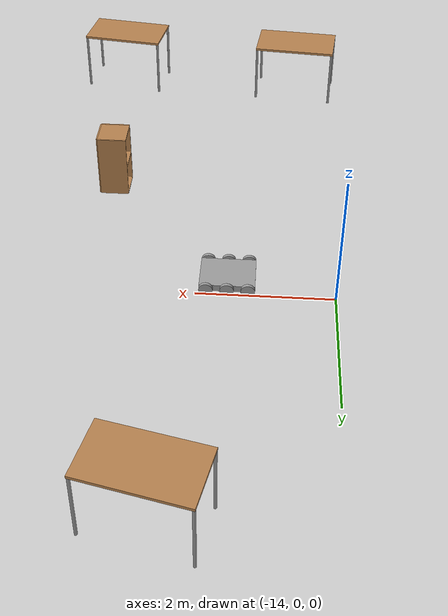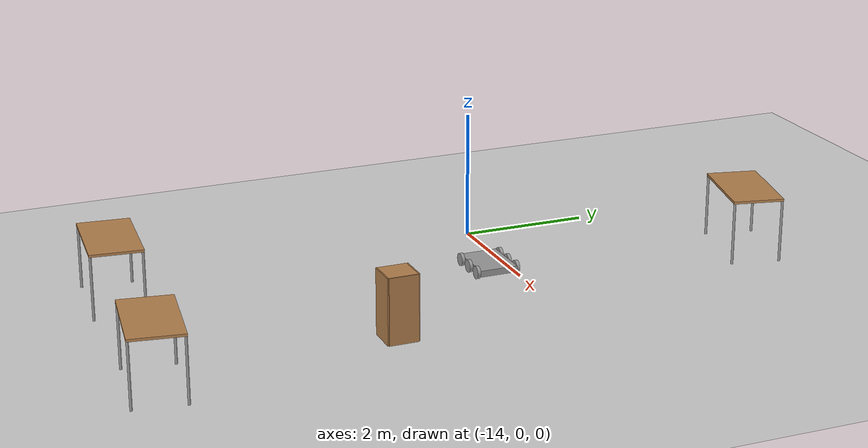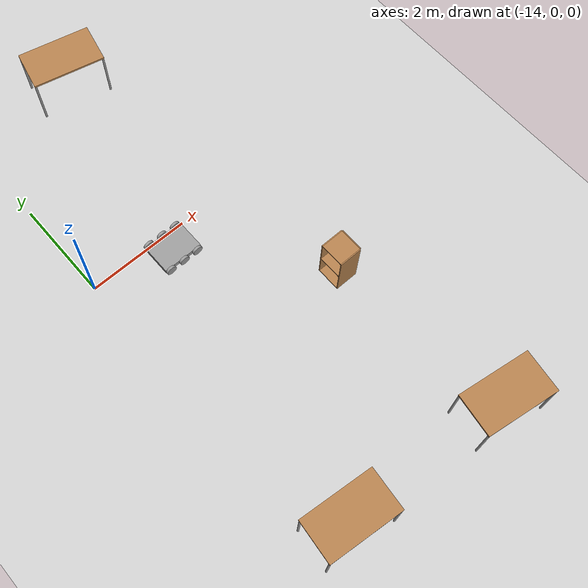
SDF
<sdf version="1.6">
 <world name="default">
  <model name="ground_plane">
   <static>1</static>
   <link name="link">
    <collision name="collision">
     <geometry><plane><normal>0 0 1</normal><size>100 100</size></plane></geometry>
     <surface><friction><ode><mu>100</mu><mu2>50</mu2></ode></friction></surface>
    </collision>
    <visual name="visual">
     <cast_shadows>0</cast_shadows>
     <geometry><plane><normal>0 0 1</normal><size>100 100</size></plane></geometry>
     <material>
      <script><uri>file://media/materials/scripts/gazebo.material</uri><name>Gazebo/Grey</name></script>
     </material>
    </visual>
   </link>
  </model>
  <model name="table">
   <static>0</static>
   <link name="link">
    <collision name="surface">
     <pose>0 0 1 0 -0 0</pose>
     <geometry><box><size>1.5 0.8 0.03</size></box></geometry>
     <surface><friction><ode><mu>0.6</mu><mu2>0.6</mu2></ode></friction></surface>
    </collision>
    <visual name="visual1">
     <pose>0 0 1 0 -0 0</pose>
     <geometry><box><size>1.4 0.8 0.04</size></box></geometry>
     <material>
      <script><uri>file://media/materials/scripts/gazebo.material</uri><name>Gazebo/Wood</name></script>
     </material>
    </visual>
    <collision name="front_left_leg">
     <pose>0.68 0.38 0.5 0 -0 0</pose>
     <geometry><cylinder><radius>0.02</radius><length>1</length></cylinder></geometry>
    </collision>
    <visual name="front_left_leg">
     <pose>0.68 0.38 0.5 0 -0 0</pose>
     <geometry><cylinder><radius>0.02</radius><length>1</length></cylinder></geometry>
     <material>
      <script><uri>file://media/materials/scripts/gazebo.material</uri><name>Gazebo/Grey</name></script>
     </material>
    </visual>
    <collision name="front_right_leg">
     <pose>0.68 -0.38 0.5 0 -0 0</pose>
     <geometry><cylinder><radius>0.02</radius><length>1</length></cylinder></geometry>
    </collision>
    <visual name="front_right_leg">
     <pose>0.68 -0.38 0.5 0 -0 0</pose>
     <geometry><cylinder><radius>0.02</radius><length>1</length></cylinder></geometry>
     <material>
      <script><uri>file://media/materials/scripts/gazebo.material</uri><name>Gazebo/Grey</name></script>
     </material>
    </visual>
    <collision name="back_right_leg">
     <pose>-0.68 -0.38 0.5 0 -0 0</pose>
     <geometry><cylinder><radius>0.02</radius><length>1</length></cylinder></geometry>
    </collision>
    <visual name="back_right_leg">
     <pose>-0.68 -0.38 0.5 0 -0 0</pose>
     <geometry><cylinder><radius>0.02</radius><length>1</length></cylinder></geometry>
     <material>
      <script><uri>file://media/materials/scripts/gazebo.material</uri><name>Gazebo/Grey</name></script>
     </material>
    </visual>
    <collision name="back_left_leg">
     <pose>-0.68 0.38 0.5 0 -0 0</pose>
     <geometry><cylinder><radius>0.02</radius><length>1</length></cylinder></geometry>
    </collision>
    <visual name="back_left_leg">
     <pose>-0.68 0.38 0.5 0 -0 0</pose>
     <geometry><cylinder><radius>0.02</radius><length>1</length></cylinder></geometry>
     <material>
      <script><uri>file://media/materials/scripts/gazebo.material</uri><name>Gazebo/Grey</name></script>
     </material>
    </visual>
    <inertial>
     <inertia><ixx>1</ixx><ixy>0</ixy><ixz>0</ixz><iyy>1</iyy><iyz>0</iyz><izz>1</izz></inertia>
     <mass>1</mass>
    </inertial>
   </link>
   <pose>-10.2213 -6.20555 -9e-06 2e-06 0 -0.150803</pose>
  </model>
  <model name="table_0">
   <static>0</static>
   <link name="link">
    <collision name="surface">
     <pose>0 0 1 0 -0 0</pose>
     <geometry><box><size>1.5 0.8 0.03</size></box></geometry>
     <surface><friction><ode><mu>0.6</mu><mu2>0.6</mu2></ode></friction></surface>
    </collision>
    <visual name="visual1">
     <pose>0 0 1 0 -0 0</pose>
     <geometry><box><size>1.4 0.8 0.04</size></box></geometry>
     <material>
      <script><uri>file://media/materials/scripts/gazebo.material</uri><name>Gazebo/Wood</name></script>
     </material>
    </visual>
    <collision name="front_left_leg">
     <pose>0.68 0.38 0.5 0 -0 0</pose>
     <geometry><cylinder><radius>0.02</radius><length>1</length></cylinder></geometry>
    </collision>
    <visual name="front_left_leg">
     <pose>0.68 0.38 0.5 0 -0 0</pose>
     <geometry><cylinder><radius>0.02</radius><length>1</length></cylinder></geometry>
     <material>
      <script><uri>file://media/materials/scripts/gazebo.material</uri><name>Gazebo/Grey</name></script>
     </material>
    </visual>
    <collision name="front_right_leg">
     <pose>0.68 -0.38 0.5 0 -0 0</pose>
     <geometry><cylinder><radius>0.02</radius><length>1</length></cylinder></geometry>
    </collision>
    <visual name="front_right_leg">
     <pose>0.68 -0.38 0.5 0 -0 0</pose>
     <geometry><cylinder><radius>0.02</radius><length>1</length></cylinder></geometry>
     <material>
      <script><uri>file://media/materials/scripts/gazebo.material</uri><name>Gazebo/Grey</name></script>
     </material>
    </visual>
    <collision name="back_right_leg">
     <pose>-0.68 -0.38 0.5 0 -0 0</pose>
     <geometry><cylinder><radius>0.02</radius><length>1</length></cylinder></geometry>
    </collision>
    <visual name="back_right_leg">
     <pose>-0.68 -0.38 0.5 0 -0 0</pose>
     <geometry><cylinder><radius>0.02</radius><length>1</length></cylinder></geometry>
     <material>
      <script><uri>file://media/materials/scripts/gazebo.material</uri><name>Gazebo/Grey</name></script>
     </material>
    </visual>
    <collision name="back_left_leg">
     <pose>-0.68 0.38 0.5 0 -0 0</pose>
     <geometry><cylinder><radius>0.02</radius><length>1</length></cylinder></geometry>
    </collision>
    <visual name="back_left_leg">
     <pose>-0.68 0.38 0.5 0 -0 0</pose>
     <geometry><cylinder><radius>0.02</radius><length>1</length></cylinder></geometry>
     <material>
      <script><uri>file://media/materials/scripts/gazebo.material</uri><name>Gazebo/Grey</name></script>
     </material>
    </visual>
    <inertial>
     <inertia><ixx>1</ixx><ixy>0</ixy><ixz>0</ixz><iyy>1</iyy><iyz>0</iyz><izz>1</izz></inertia>
     <mass>1</mass>
    </inertial>
   </link>
   <pose>-13.4117 -5.96118 -8e-06 1e-06 0 -0.102697</pose>
  </model>
  <model name="table_4">
   <static>0</static>
   <link name="link">
    <collision name="surface">
     <pose>0 0 1 0 -0 0</pose>
     <geometry><box><size>1.5 0.8 0.03</size></box></geometry>
     <surface><friction><ode><mu>0.6</mu><mu2>0.6</mu2></ode></friction></surface>
    </collision>
    <visual name="visual1">
     <pose>0 0 1 0 -0 0</pose>
     <geometry><box><size>1.4 0.8 0.04</size></box></geometry>
     <material>
      <script><uri>file://media/materials/scripts/gazebo.material</uri><name>Gazebo/Wood</name></script>
     </material>
    </visual>
    <collision name="front_left_leg">
     <pose>0.68 0.38 0.5 0 -0 0</pose>
     <geometry><cylinder><radius>0.02</radius><length>1</length></cylinder></geometry>
    </collision>
    <visual name="front_left_leg">
     <pose>0.68 0.38 0.5 0 -0 0</pose>
     <geometry><cylinder><radius>0.02</radius><length>1</length></cylinder></geometry>
     <material>
      <script><uri>file://media/materials/scripts/gazebo.material</uri><name>Gazebo/Grey</name></script>
     </material>
    </visual>
    <collision name="front_right_leg">
     <pose>0.68 -0.38 0.5 0 -0 0</pose>
     <geometry><cylinder><radius>0.02</radius><length>1</length></cylinder></geometry>
    </collision>
    <visual name="front_right_leg">
     <pose>0.68 -0.38 0.5 0 -0 0</pose>
     <geometry><cylinder><radius>0.02</radius><length>1</length></cylinder></geometry>
     <material>
      <script><uri>file://media/materials/scripts/gazebo.material</uri><name>Gazebo/Grey</name></script>
     </material>
    </visual>
    <collision name="back_right_leg">
     <pose>-0.68 -0.38 0.5 0 -0 0</pose>
     <geometry><cylinder><radius>0.02</radius><length>1</length></cylinder></geometry>
    </collision>
    <visual name="back_right_leg">
     <pose>-0.68 -0.38 0.5 0 -0 0</pose>
     <geometry><cylinder><radius>0.02</radius><length>1</length></cylinder></geometry>
     <material>
      <script><uri>file://media/materials/scripts/gazebo.material</uri><name>Gazebo/Grey</name></script>
     </material>
    </visual>
    <collision name="back_left_leg">
     <pose>-0.68 0.38 0.5 0 -0 0</pose>
     <geometry><cylinder><radius>0.02</radius><length>1</length></cylinder></geometry>
    </collision>
    <visual name="back_left_leg">
     <pose>-0.68 0.38 0.5 0 -0 0</pose>
     <geometry><cylinder><radius>0.02</radius><length>1</length></cylinder></geometry>
     <material>
      <script><uri>file://media/materials/scripts/gazebo.material</uri><name>Gazebo/Grey</name></script>
     </material>
    </visual>
    <inertial>
     <inertia><ixx>1</ixx><ixy>0</ixy><ixz>0</ixz><iyy>1</iyy><iyz>0</iyz><izz>1</izz></inertia>
     <mass>1</mass>
    </inertial>
   </link>
   <pose>-11.7809 3.76899 -3e-06 0 -4e-06 -0.220669</pose>
  </model>
  <model name="cabinet">
   <static>1</static>
   <link name="cabinet_bottom_plate">
    <inertial>
     <pose>0 0 -1 0 -0 0</pose>
     <inertia><ixx>2.05</ixx><ixy>0</ixy><ixz>0</ixz><iyy>2.05</iyy><iyz>0</iyz><izz>2.05</izz></inertia>
     <mass>25</mass>
    </inertial>
    <collision name="cabinet_bottom_plate_geom">
     <pose>0 0 0.01 0 -0 0</pose>
     <geometry><box><size>0.45 0.45 0.02</size></box></geometry>
    </collision>
    <visual name="cabinet_bottom_plate_geom_visual">
     <pose>0 0 0.01 0 -0 0</pose>
     <geometry><box><size>0.45 0.45 0.02</size></box></geometry>
     <material>
      <script><uri>file://media/materials/scripts/gazebo.material</uri><name>Gazebo/Wood</name></script>
     </material>
    </visual>
    <collision name="cabinet_bottom_plate_geom_cabinet_back_plate">
     <pose>0.235 0 0.51 0 -0 0</pose>
     <geometry><box><size>0.02 0.45 1.02</size></box></geometry>
    </collision>
    <visual name="cabinet_bottom_plate_geom_cabinet_back_plate_visual">
     <pose>0.235 0 0.51 0 -0 0</pose>
     <geometry><box><size>0.02 0.45 1.02</size></box></geometry>
     <material>
      <script><uri>file://media/materials/scripts/gazebo.material</uri><name>Gazebo/Wood</name></script>
     </material>
    </visual>
    <collision name="cabinet_bottom_plate_geom_cabinet_left_plate">
     <pose>0 0.235 0.51 0 -0 0</pose>
     <geometry><box><size>0.45 0.02 1.02</size></box></geometry>
    </collision>
    <visual name="cabinet_bottom_plate_geom_cabinet_left_plate_visual">
     <pose>0 0.235 0.51 0 -0 0</pose>
     <geometry><box><size>0.45 0.02 1.02</size></box></geometry>
     <material>
      <script><uri>file://media/materials/scripts/gazebo.material</uri><name>Gazebo/Wood</name></script>
     </material>
    </visual>
    <collision name="cabinet_bottom_plate_geom_cabinet_middle_plate">
     <pose>0 0 0.51 0 -0 0</pose>
     <geometry><box><size>0.45 0.45 0.02</size></box></geometry>
    </collision>
    <visual name="cabinet_bottom_plate_geom_cabinet_middle_plate_visual">
     <pose>0 0 0.51 0 -0 0</pose>
     <geometry><box><size>0.45 0.45 0.02</size></box></geometry>
     <material>
      <script><uri>file://media/materials/scripts/gazebo.material</uri><name>Gazebo/Wood</name></script>
     </material>
    </visual>
    <collision name="cabinet_bottom_plate_geom_cabinet_right_plate">
     <pose>0 -0.235 0.51 0 -0 0</pose>
     <geometry><box><size>0.45 0.02 1.02</size></box></geometry>
    </collision>
    <visual name="cabinet_bottom_plate_geom_cabinet_right_plate_visual">
     <pose>0 -0.235 0.51 0 -0 0</pose>
     <geometry><box><size>0.45 0.02 1.02</size></box></geometry>
     <material>
      <script><uri>file://media/materials/scripts/gazebo.material</uri><name>Gazebo/Wood</name></script>
     </material>
    </visual>
    <collision name="cabinet_bottom_plate_geom_cabinet_top_plate">
     <pose>0 0 1.01 0 -0 0</pose>
     <geometry><box><size>0.45 0.45 0.02</size></box></geometry>
    </collision>
    <visual name="cabinet_bottom_plate_geom_cabinet_top_plate_visual">
     <pose>0 0 1.01 0 -0 0</pose>
     <geometry><box><size>0.45 0.45 0.02</size></box></geometry>
     <material>
      <script><uri>file://media/materials/scripts/gazebo.material</uri><name>Gazebo/Wood</name></script>
     </material>
    </visual>
   </link>
   <pose>-10.5002 -2.58947 0 0 -0 0</pose>
  </model>
  <model name="metal_hawk_0">
   <link name="link_0">
    <pose>0.748449 -1.01746 0.5 0 -0 0</pose>
    <inertial>
     <mass>1</mass>
     <inertia>
      <ixx>0.166667</ixx>
      <ixy>0</ixy>
      <ixz>0</ixz>
      <iyy>0.166667</iyy>
      <iyz>0</iyz>
      <izz>0.166667</izz>
     </inertia>
     <pose>0 0 0.1 0 -0 0</pose>
    </inertial>
    <visual name="visual">
     <geometry><box><size>0.8 0.6 0.1</size></box></geometry>
     <material>
      <lighting>1</lighting>
      <script><uri>file://media/materials/scripts/gazebo.material</uri><name>Gazebo/Grey</name></script>
      <ambient>0.3 0.3 0.3 1</ambient>
      <diffuse>0.7 0.7 0.7 1</diffuse>
      <specular>0.01 0.01 0.01 1</specular>
      <emissive>0 0 0 1</emissive>
      <shader type="vertex"><normal_map>__default__</normal_map></shader>
     </material>
    </visual>
    <collision name="collision">
     <geometry><box><size>0.8 0.6 0.1</size></box></geometry>
     <surface>
      <friction>
       <ode><mu>1</mu><mu2>1</mu2><fdir1>0 0 0</fdir1><slip1>0</slip1><slip2>0</slip2></ode>
       <torsional>
        <coefficient>1</coefficient>
        <patch_radius>0</patch_radius>
        <surface_radius>0</surface_radius>
        <use_patch_radius>1</use_patch_radius>
        <ode><slip>0</slip></ode>
       </torsional>
      </friction>
      <bounce><restitution_coefficient>0</restitution_coefficient><threshold>1e+06</threshold></bounce>
      <contact>
       <collide_without_contact>0</collide_without_contact>
       <collide_without_contact_bitmask>1</collide_without_contact_bitmask>
       <collide_bitmask>1</collide_bitmask>
       <ode>
        <soft_cfm>0</soft_cfm>
        <soft_erp>0.2</soft_erp>
        <kp>1e+13</kp>
        <kd>1</kd>
        <max_vel>0.01</max_vel>
        <min_depth>0</min_depth>
       </ode>
       <bullet>
        <split_impulse>1</split_impulse>
        <split_impulse_penetration_threshold>-0.01</split_impulse_penetration_threshold>
        <soft_cfm>0</soft_cfm>
        <soft_erp>0.2</soft_erp>
        <kp>1e+13</kp>
        <kd>1</kd>
       </bullet>
      </contact>
     </surface>
    </collision>
   </link>
   <link name="link_1">
    <pose>0.448449 -1.34247 0.5 1.5707 -0 0</pose>
    <inertial>
     <mass>1</mass>
     <inertia><ixx>0.145833</ixx><ixy>0</ixy><ixz>0</ixz><iyy>0.145833</iyy><iyz>0</iyz><izz>0.125</izz></inertia>
    </inertial>
    <visual name="visual">
     <geometry><cylinder><radius>0.1</radius><length>0.05</length></cylinder></geometry>
     <material>
      <lighting>1</lighting>
      <script><uri>file://media/materials/scripts/gazebo.material</uri><name>Gazebo/Grey</name></script>
      <ambient>0.3 0.3 0.3 1</ambient>
      <diffuse>0.7 0.7 0.7 1</diffuse>
      <specular>0.01 0.01 0.01 1</specular>
      <emissive>0 0 0 1</emissive>
      <shader type="vertex"><normal_map>__default__</normal_map></shader>
     </material>
    </visual>
    <collision name="collision">
     <geometry><cylinder><radius>0.1</radius><length>0.05</length></cylinder></geometry>
     <surface>
      <friction>
       <ode><mu>1</mu><mu2>1</mu2><fdir1>0 0 0</fdir1><slip1>0</slip1><slip2>0</slip2></ode>
       <torsional>
        <coefficient>1</coefficient>
        <patch_radius>0</patch_radius>
        <surface_radius>0</surface_radius>
        <use_patch_radius>1</use_patch_radius>
        <ode><slip>0</slip></ode>
       </torsional>
      </friction>
      <bounce><restitution_coefficient>0</restitution_coefficient><threshold>1e+06</threshold></bounce>
      <contact>
       <collide_without_contact>0</collide_without_contact>
       <collide_without_contact_bitmask>1</collide_without_contact_bitmask>
       <collide_bitmask>1</collide_bitmask>
       <ode>
        <soft_cfm>0</soft_cfm>
        <soft_erp>0.2</soft_erp>
        <kp>1e+13</kp>
        <kd>1</kd>
        <max_vel>0.01</max_vel>
        <min_depth>0</min_depth>
       </ode>
       <bullet>
        <split_impulse>1</split_impulse>
        <split_impulse_penetration_threshold>-0.01</split_impulse_penetration_threshold>
        <soft_cfm>0</soft_cfm>
        <soft_erp>0.2</soft_erp>
        <kp>1e+13</kp>
        <kd>1</kd>
       </bullet>
      </contact>
     </surface>
    </collision>
   </link>
   <link name="link_1_clone">
    <pose>1.04845 -1.34247 0.5 1.5707 -0 0</pose>
    <inertial>
     <mass>1</mass>
     <inertia><ixx>0.145833</ixx><ixy>0</ixy><ixz>0</ixz><iyy>0.145833</iyy><iyz>0</iyz><izz>0.125</izz></inertia>
    </inertial>
    <visual name="visual">
     <geometry><cylinder><radius>0.1</radius><length>0.05</length></cylinder></geometry>
     <material>
      <lighting>1</lighting>
      <script><uri>file://media/materials/scripts/gazebo.material</uri><name>Gazebo/Grey</name></script>
      <ambient>0.3 0.3 0.3 1</ambient>
      <diffuse>0.7 0.7 0.7 1</diffuse>
      <specular>0.01 0.01 0.01 1</specular>
      <emissive>0 0 0 1</emissive>
      <shader type="vertex"><normal_map>__default__</normal_map></shader>
     </material>
    </visual>
    <collision name="collision">
     <geometry><cylinder><radius>0.1</radius><length>0.05</length></cylinder></geometry>
     <surface>
      <friction>
       <ode><mu>1</mu><mu2>1</mu2><fdir1>0 0 0</fdir1><slip1>0</slip1><slip2>0</slip2></ode>
       <torsional>
        <coefficient>1</coefficient>
        <patch_radius>0</patch_radius>
        <surface_radius>0</surface_radius>
        <use_patch_radius>1</use_patch_radius>
        <ode><slip>0</slip></ode>
       </torsional>
      </friction>
      <bounce><restitution_coefficient>0</restitution_coefficient><threshold>1e+06</threshold></bounce>
      <contact>
       <collide_without_contact>0</collide_without_contact>
       <collide_without_contact_bitmask>1</collide_without_contact_bitmask>
       <collide_bitmask>1</collide_bitmask>
       <ode>
        <soft_cfm>0</soft_cfm>
        <soft_erp>0.2</soft_erp>
        <kp>1e+13</kp>
        <kd>1</kd>
        <max_vel>0.01</max_vel>
        <min_depth>0</min_depth>
       </ode>
       <bullet>
        <split_impulse>1</split_impulse>
        <split_impulse_penetration_threshold>-0.01</split_impulse_penetration_threshold>
        <soft_cfm>0</soft_cfm>
        <soft_erp>0.2</soft_erp>
        <kp>1e+13</kp>
        <kd>1</kd>
       </bullet>
      </contact>
     </surface>
    </collision>
   </link>
   <link name="link_1_clone_0">
    <pose>1.04845 -0.692452 0.5 1.5707 -0 0</pose>
    <inertial>
     <mass>1</mass>
     <inertia><ixx>0.145833</ixx><ixy>0</ixy><ixz>0</ixz><iyy>0.145833</iyy><iyz>0</iyz><izz>0.125</izz></inertia>
    </inertial>
    <visual name="visual">
     <geometry><cylinder><radius>0.1</radius><length>0.05</length></cylinder></geometry>
     <material>
      <lighting>1</lighting>
      <script><uri>file://media/materials/scripts/gazebo.material</uri><name>Gazebo/Grey</name></script>
      <ambient>0.3 0.3 0.3 1</ambient>
      <diffuse>0.7 0.7 0.7 1</diffuse>
      <specular>0.01 0.01 0.01 1</specular>
      <emissive>0 0 0 1</emissive>
      <shader type="vertex"><normal_map>__default__</normal_map></shader>
     </material>
    </visual>
    <collision name="collision">
     <geometry><cylinder><radius>0.1</radius><length>0.05</length></cylinder></geometry>
     <surface>
      <friction>
       <ode><mu>1</mu><mu2>1</mu2><fdir1>0 0 0</fdir1><slip1>0</slip1><slip2>0</slip2></ode>
       <torsional>
        <coefficient>1</coefficient>
        <patch_radius>0</patch_radius>
        <surface_radius>0</surface_radius>
        <use_patch_radius>1</use_patch_radius>
        <ode><slip>0</slip></ode>
       </torsional>
      </friction>
      <bounce><restitution_coefficient>0</restitution_coefficient><threshold>1e+06</threshold></bounce>
      <contact>
       <collide_without_contact>0</collide_without_contact>
       <collide_without_contact_bitmask>1</collide_without_contact_bitmask>
       <collide_bitmask>1</collide_bitmask>
       <ode>
        <soft_cfm>0</soft_cfm>
        <soft_erp>0.2</soft_erp>
        <kp>1e+13</kp>
        <kd>1</kd>
        <max_vel>0.01</max_vel>
        <min_depth>0</min_depth>
       </ode>
       <bullet>
        <split_impulse>1</split_impulse>
        <split_impulse_penetration_threshold>-0.01</split_impulse_penetration_threshold>
        <soft_cfm>0</soft_cfm>
        <soft_erp>0.2</soft_erp>
        <kp>1e+13</kp>
        <kd>1</kd>
       </bullet>
      </contact>
     </surface>
    </collision>
   </link>
   <link name="link_1_clone_0_clone">
    <pose>0.748449 -0.692452 0.5 1.5707 -0 0</pose>
    <inertial>
     <mass>1</mass>
     <inertia><ixx>0.145833</ixx><ixy>0</ixy><ixz>0</ixz><iyy>0.145833</iyy><iyz>0</iyz><izz>0.125</izz></inertia>
    </inertial>
    <visual name="visual">
     <geometry><cylinder><radius>0.1</radius><length>0.05</length></cylinder></geometry>
     <material>
      <lighting>1</lighting>
      <script><uri>file://media/materials/scripts/gazebo.material</uri><name>Gazebo/Grey</name></script>
      <ambient>0.3 0.3 0.3 1</ambient>
      <diffuse>0.7 0.7 0.7 1</diffuse>
      <specular>0.01 0.01 0.01 1</specular>
      <emissive>0 0 0 1</emissive>
      <shader type="vertex"><normal_map>__default__</normal_map></shader>
     </material>
    </visual>
    <collision name="collision">
     <geometry><cylinder><radius>0.1</radius><length>0.05</length></cylinder></geometry>
     <surface>
      <friction>
       <ode><mu>1</mu><mu2>1</mu2><fdir1>0 0 0</fdir1><slip1>0</slip1><slip2>0</slip2></ode>
       <torsional>
        <coefficient>1</coefficient>
        <patch_radius>0</patch_radius>
        <surface_radius>0</surface_radius>
        <use_patch_radius>1</use_patch_radius>
        <ode><slip>0</slip></ode>
       </torsional>
      </friction>
      <bounce><restitution_coefficient>0</restitution_coefficient><threshold>1e+06</threshold></bounce>
      <contact>
       <collide_without_contact>0</collide_without_contact>
       <collide_without_contact_bitmask>1</collide_without_contact_bitmask>
       <collide_bitmask>1</collide_bitmask>
       <ode>
        <soft_cfm>0</soft_cfm>
        <soft_erp>0.2</soft_erp>
        <kp>1e+13</kp>
        <kd>1</kd>
        <max_vel>0.01</max_vel>
        <min_depth>0</min_depth>
       </ode>
       <bullet>
        <split_impulse>1</split_impulse>
        <split_impulse_penetration_threshold>-0.01</split_impulse_penetration_threshold>
        <soft_cfm>0</soft_cfm>
        <soft_erp>0.2</soft_erp>
        <kp>1e+13</kp>
        <kd>1</kd>
       </bullet>
      </contact>
     </surface>
    </collision>
   </link>
   <link name="link_1_clone_0_clone_clone">
    <pose>0.448449 -0.692452 0.5 1.5707 -0 0</pose>
    <inertial>
     <mass>1</mass>
     <inertia><ixx>0.145833</ixx><ixy>0</ixy><ixz>0</ixz><iyy>0.145833</iyy><iyz>0</iyz><izz>0.125</izz></inertia>
    </inertial>
    <visual name="visual">
     <geometry><cylinder><radius>0.1</radius><length>0.05</length></cylinder></geometry>
     <material>
      <lighting>1</lighting>
      <script><uri>file://media/materials/scripts/gazebo.material</uri><name>Gazebo/Grey</name></script>
      <ambient>0.3 0.3 0.3 1</ambient>
      <diffuse>0.7 0.7 0.7 1</diffuse>
      <specular>0.01 0.01 0.01 1</specular>
      <emissive>0 0 0 1</emissive>
      <shader type="vertex"><normal_map>__default__</normal_map></shader>
     </material>
    </visual>
    <collision name="collision">
     <geometry><cylinder><radius>0.1</radius><length>0.05</length></cylinder></geometry>
     <surface>
      <friction>
       <ode><mu>1</mu><mu2>1</mu2><fdir1>0 0 0</fdir1><slip1>0</slip1><slip2>0</slip2></ode>
       <torsional>
        <coefficient>1</coefficient>
        <patch_radius>0</patch_radius>
        <surface_radius>0</surface_radius>
        <use_patch_radius>1</use_patch_radius>
        <ode><slip>0</slip></ode>
       </torsional>
      </friction>
      <bounce><restitution_coefficient>0</restitution_coefficient><threshold>1e+06</threshold></bounce>
      <contact>
       <collide_without_contact>0</collide_without_contact>
       <collide_without_contact_bitmask>1</collide_without_contact_bitmask>
       <collide_bitmask>1</collide_bitmask>
       <ode>
        <soft_cfm>0</soft_cfm>
        <soft_erp>0.2</soft_erp>
        <kp>1e+13</kp>
        <kd>1</kd>
        <max_vel>0.01</max_vel>
        <min_depth>0</min_depth>
       </ode>
       <bullet>
        <split_impulse>1</split_impulse>
        <split_impulse_penetration_threshold>-0.01</split_impulse_penetration_threshold>
        <soft_cfm>0</soft_cfm>
        <soft_erp>0.2</soft_erp>
        <kp>1e+13</kp>
        <kd>1</kd>
       </bullet>
      </contact>
     </surface>
    </collision>
   </link>
   <link name="link_1_clone_clone">
    <pose>0.748449 -1.34247 0.5 1.5707 -0 0</pose>
    <inertial>
     <mass>1</mass>
     <inertia><ixx>0.145833</ixx><ixy>0</ixy><ixz>0</ixz><iyy>0.145833</iyy><iyz>0</iyz><izz>0.125</izz></inertia>
    </inertial>
    <visual name="visual">
     <geometry><cylinder><radius>0.1</radius><length>0.05</length></cylinder></geometry>
     <material>
      <lighting>1</lighting>
      <script><uri>file://media/materials/scripts/gazebo.material</uri><name>Gazebo/Grey</name></script>
      <ambient>0.3 0.3 0.3 1</ambient>
      <diffuse>0.7 0.7 0.7 1</diffuse>
      <specular>0.01 0.01 0.01 1</specular>
      <emissive>0 0 0 1</emissive>
      <shader type="vertex"><normal_map>__default__</normal_map></shader>
     </material>
    </visual>
    <collision name="collision">
     <geometry><cylinder><radius>0.1</radius><length>0.05</length></cylinder></geometry>
     <surface>
      <friction>
       <ode><mu>1</mu><mu2>1</mu2><fdir1>0 0 0</fdir1><slip1>0</slip1><slip2>0</slip2></ode>
       <torsional>
        <coefficient>1</coefficient>
        <patch_radius>0</patch_radius>
        <surface_radius>0</surface_radius>
        <use_patch_radius>1</use_patch_radius>
        <ode><slip>0</slip></ode>
       </torsional>
      </friction>
      <bounce><restitution_coefficient>0</restitution_coefficient><threshold>1e+06</threshold></bounce>
      <contact>
       <collide_without_contact>0</collide_without_contact>
       <collide_without_contact_bitmask>1</collide_without_contact_bitmask>
       <collide_bitmask>1</collide_bitmask>
       <ode>
        <soft_cfm>0</soft_cfm>
        <soft_erp>0.2</soft_erp>
        <kp>1e+13</kp>
        <kd>1</kd>
        <max_vel>0.01</max_vel>
        <min_depth>0</min_depth>
       </ode>
       <bullet>
        <split_impulse>1</split_impulse>
        <split_impulse_penetration_threshold>-0.01</split_impulse_penetration_threshold>
        <soft_cfm>0</soft_cfm>
        <soft_erp>0.2</soft_erp>
        <kp>1e+13</kp>
        <kd>1</kd>
       </bullet>
      </contact>
     </surface>
    </collision>
   </link>
   <joint name="link_0_JOINT_0" type="revolute">
    <parent>link_0</parent>
    <child>link_1</child>
    <axis>
     <xyz>1 0 0</xyz>
     <use_parent_model_frame>0</use_parent_model_frame>
     <limit>
      <lower>-1.79769e+308</lower>
      <upper>1.79769e+308</upper>
      <effort>-1</effort>
      <velocity>-1</velocity>
     </limit>
     <dynamics>
      <spring_reference>0</spring_reference>
      <spring_stiffness>0</spring_stiffness>
      <damping>0</damping>
     </dynamics>
    </axis>
    <physics>
     <ode><limit><cfm>0</cfm><erp>0.2</erp></limit><suspension><cfm>0</cfm><erp>0.2</erp></suspension></ode>
    </physics>
   </joint>
   <joint name="link_0_JOINT_1" type="revolute">
    <parent>link_0</parent>
    <child>link_1_clone_clone</child>
    <axis>
     <xyz>1 0 0</xyz>
     <use_parent_model_frame>0</use_parent_model_frame>
     <limit>
      <lower>-1.79769e+308</lower>
      <upper>1.79769e+308</upper>
      <effort>-1</effort>
      <velocity>-1</velocity>
     </limit>
     <dynamics>
      <spring_reference>0</spring_reference>
      <spring_stiffness>0</spring_stiffness>
      <damping>0</damping>
     </dynamics>
    </axis>
    <physics>
     <ode><limit><cfm>0</cfm><erp>0.2</erp></limit><suspension><cfm>0</cfm><erp>0.2</erp></suspension></ode>
    </physics>
   </joint>
   <joint name="link_0_JOINT_2" type="revolute">
    <parent>link_0</parent>
    <child>link_1_clone</child>
    <axis>
     <xyz>1 0 0</xyz>
     <use_parent_model_frame>0</use_parent_model_frame>
     <limit>
      <lower>-1.79769e+308</lower>
      <upper>1.79769e+308</upper>
      <effort>-1</effort>
      <velocity>-1</velocity>
     </limit>
     <dynamics>
      <spring_reference>0</spring_reference>
      <spring_stiffness>0</spring_stiffness>
      <damping>0</damping>
     </dynamics>
    </axis>
    <physics>
     <ode><limit><cfm>0</cfm><erp>0.2</erp></limit><suspension><cfm>0</cfm><erp>0.2</erp></suspension></ode>
    </physics>
   </joint>
   <joint name="link_0_JOINT_3" type="revolute">
    <parent>link_0</parent>
    <child>link_1_clone_0</child>
    <axis>
     <xyz>1 0 0</xyz>
     <use_parent_model_frame>0</use_parent_model_frame>
     <limit>
      <lower>-1.79769e+308</lower>
      <upper>1.79769e+308</upper>
      <effort>-1</effort>
      <velocity>-1</velocity>
     </limit>
     <dynamics>
      <spring_reference>0</spring_reference>
      <spring_stiffness>0</spring_stiffness>
      <damping>0</damping>
     </dynamics>
    </axis>
    <physics>
     <ode><limit><cfm>0</cfm><erp>0.2</erp></limit><suspension><cfm>0</cfm><erp>0.2</erp></suspension></ode>
    </physics>
   </joint>
   <joint name="link_0_JOINT_4" type="revolute">
    <parent>link_0</parent>
    <child>link_1_clone_0_clone</child>
    <axis>
     <xyz>1 0 0</xyz>
     <use_parent_model_frame>0</use_parent_model_frame>
     <limit>
      <lower>-1.79769e+308</lower>
      <upper>1.79769e+308</upper>
      <effort>-1</effort>
      <velocity>-1</velocity>
     </limit>
     <dynamics>
      <spring_reference>0</spring_reference>
      <spring_stiffness>0</spring_stiffness>
      <damping>0</damping>
     </dynamics>
    </axis>
    <physics>
     <ode><limit><cfm>0</cfm><erp>0.2</erp></limit><suspension><cfm>0</cfm><erp>0.2</erp></suspension></ode>
    </physics>
   </joint>
   <joint name="link_0_JOINT_5" type="revolute">
    <parent>link_0</parent>
    <child>link_1_clone_0_clone_clone</child>
    <axis>
     <xyz>1 0 0</xyz>
     <use_parent_model_frame>0</use_parent_model_frame>
     <limit>
      <lower>-1.79769e+308</lower>
      <upper>1.79769e+308</upper>
      <effort>-1</effort>
      <velocity>-1</velocity>
     </limit>
     <dynamics>
      <spring_reference>0</spring_reference>
      <spring_stiffness>0</spring_stiffness>
      <damping>0</damping>
     </dynamics>
    </axis>
    <physics>
     <ode><limit><cfm>0</cfm><erp>0.2</erp></limit><suspension><cfm>0</cfm><erp>0.2</erp></suspension></ode>
    </physics>
   </joint>
   <static>0</static>
   <pose>-13.205 0.69548 -0.399999 -0 1e-06 0.001339</pose>
  </model>
 </world>
</sdf>
